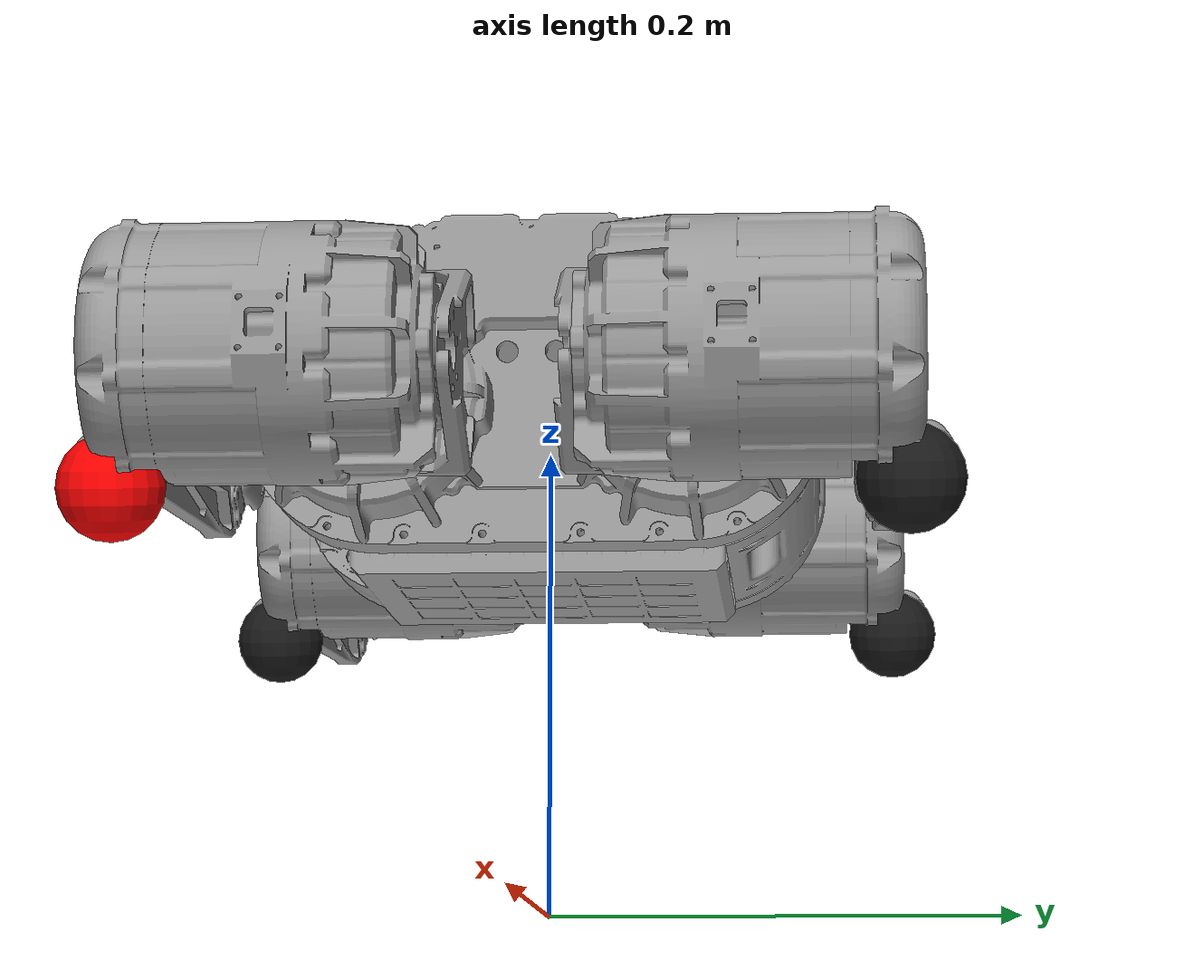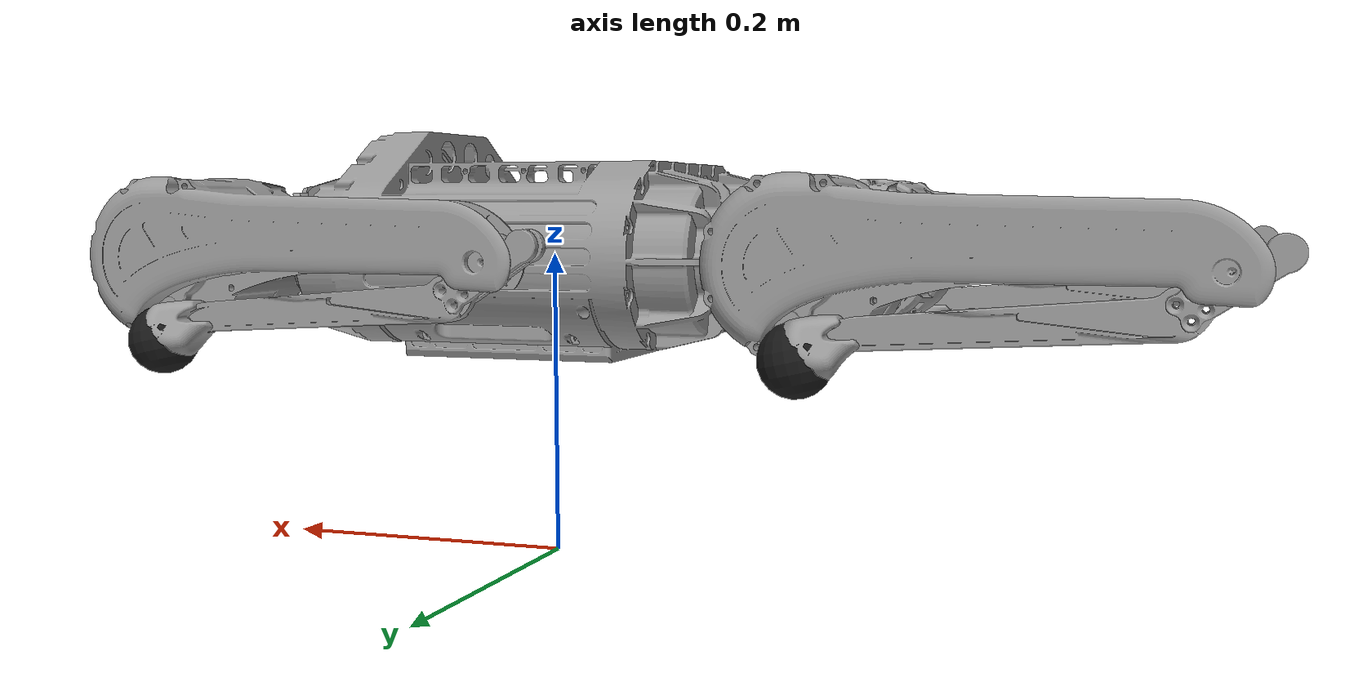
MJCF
<mujoco model="hb50">
  <compiler angle="radian" autolimits="true"/>

  <default>
    <default class="hb50">
      <default class="drive">
        <joint axis="1 0 0" armature="0.0094" damping="0.1" frictionloss="0.48"/>
        <motor ctrlrange="-24 24"/>
      </default>
      <default class="visual">
        <geom type="mesh" contype="0" conaffinity="0" group="2"/>
      </default>
      <default class="collision">
        <geom group="3" priority="1" condim="3" friction="0.9" solref="0.005 1" rgba="1 0.41 0 0.2"/>
      </default>
    </default>
  </default>

  <asset>
    <material name="silver" rgba="0.6 0.6 0.6 1" specular="0.1" shininess="0.05"/>
    <material name="black" rgba="0.1 0.1 0.1 1" specular="0.1" shininess="0.05"/>
    <material name="red" rgba="1 0 0 1" specular="0.1" shininess="0.05"/>
    <mesh name="body" file="../../meshes/hb50/visual/hb50_body.stl" scale="0.001 0.001 0.001"/>
    <mesh name="l0f" file="../../meshes/hb50/visual/hb50_l0f.stl" scale="0.001 0.001 0.001"/>
    <mesh name="l0r" file="../../meshes/hb50/visual/hb50_l0r.stl" scale="0.001 0.001 0.001"/>
    <mesh name="l1r" file="../../meshes/hb50/visual/hb50_l1r.stl" scale="0.001 0.001 0.001"/>
    <mesh name="l1l" file="../../meshes/hb50/visual/hb50_l1l.stl" scale="0.001 0.001 0.001"/>
    <mesh name="l2r" file="../../meshes/hb50/visual/hb50_l2r.stl" scale="0.001 0.001 0.001"/>
    <mesh name="l2l" file="../../meshes/hb50/visual/hb50_l2l.stl" scale="0.001 0.001 0.001"/>
  </asset>

  <worldbody>
    <body name="body" pos="0 0 0.2" childclass="hb50">
      <site name="imu" pos="0.069301 0 0"/>
      <inertial pos="0 0 0" mass="7.812" diaginertia="0.034280 0.053850 0.073590"/>
      <freejoint name="root"/>
      <geom mesh="body" material="silver" class="visual"/>
      <geom type="box" size="0.098 0.076 0.062" pos="0 0 -0.002" class="collision"/>
      <geom type="cylinder" size="0.056 0.141" pos="0 0.064 0" euler="0 1.570796 0" class="collision"/>
      <geom type="cylinder" size="0.056 0.141" pos="0 -0.064 0" euler="0 1.570796 0" class="collision"/>
      <geom type="box" size="0.024 0.064 0.024" pos="0.09 0 0.057" class="collision"/>
      <body name="fr_l0" pos="0.1405 -0.064 0">
        <inertial pos="0.021234 0.02611 -0.00004" mass="0.107" diaginertia="0.000066961 0.000070869 0.000062385"/>
        <joint name="fr_j0" class="drive" range="-1.047198 1.570796"/>
        <geom quat="0 1 0 0" mesh="l0f" material="silver" class="visual"/>
        <body name="fr_l1" pos="0.06 0.0385 0" quat="0.707107 0 0 -0.707107">
          <inertial pos="0.067316 -0.013171 0.002548" mass="2.081" diaginertia="0.006065 0.003514 0.007592"/>
          <joint name="fr_j1" class="drive" range="-1.570796 1.570796"/>
          <geom quat="0 1 0 0" mesh="l1r" material="silver" class="visual"/>
          <geom type="cylinder" size="0.051 0.066" pos="0.066 0 0" euler="0 1.570796 0" class="collision"/>
          <geom type="box" size="0.014 0.11 0.026" pos="0.118 -0.134 0.013" euler="0.05 0 0" class="collision"/>
          <body name="fr_l2" pos="0.11965 -0.22 0" quat="0.113203 0.993572 0 0">
            <inertial pos="0.000982 -0.103425 0.002827" mass="0.141" diaginertia="0.001234 0.000021630 0.001225"/>
            <joint name="fr_j2" class="drive" range="-2.705260 0"/>
            <geom quat="0 1 0 0" mesh="l2r" material="silver" class="visual"/>
            <geom type="cylinder" size="0.012 0.03" pos="0 0.01 0.004" euler="1.2 0 0" class="collision"/>
            <geom type="cylinder" size="0.016 0.098" pos="0 -0.11 0.006" euler="1.7 0.01 -0.005" class="collision"/>
            <geom type="sphere" size="0.021" pos="0.006 -0.22 0" material="red" class="visual"/>
            <geom name="fr_foot" size="0.021" pos="0.006 -0.22 0" class="collision"/>
          </body>
        </body>
      </body>
      <body name="fl_l0" pos="0.1405 0.064 0">
        <inertial pos="0.021234 -0.02611 0.00004" mass="0.107" diaginertia="0.000066961 0.000070869 0.000062385"/>
        <joint name="fl_j0" class="drive" range="-1.570796 1.047198"/>
        <geom mesh="l0f" material="silver" class="visual"/>
        <body name="fl_l1" pos="0.06 -0.0385 0" quat="0.707107 0 0 0.707107">
          <inertial pos="0.067316 0.013171 0.002548" mass="2.081" diaginertia="0.006065 0.003514 0.007592"/>
          <joint name="fl_j1" class="drive" range="-1.570796 1.570796"/>
          <geom quat="0 0 1 0" mesh="l1l" material="silver" class="visual"/>
          <geom type="cylinder" size="0.051 0.066" pos="0.066 0 0" euler="0 1.570796 0" class="collision"/>
          <geom type="box" size="0.014 0.11 0.026" pos="0.118 0.134 0.013" euler="-0.05 0 0" class="collision"/>
          <body name="fl_l2" pos="0.11965 0.22 0" quat="0.113203 -0.993572 0 0">
            <inertial pos="0.000982 0.103425 0.002827" mass="0.141" diaginertia="0.001234 0.000021630 0.001225"/>
            <joint name="fl_j2" class="drive" range="0 2.705260"/>
            <geom quat="0 0 1 0" mesh="l2l" material="silver" class="visual"/>
            <geom type="cylinder" size="0.012 0.03" pos="0 -0.01 0.004" euler="-1.2 0 0" class="collision"/>
            <geom type="cylinder" size="0.016 0.098" pos="0 0.11 0.006" euler="-1.7 0.01 0.005" class="collision"/>
            <geom type="sphere" size="0.021" pos="0.006 0.22 0" material="black" class="visual"/>
            <geom name="fl_foot" size="0.021" pos="0.006 0.22 0" class="collision"/>
          </body>
        </body>
      </body>
      <body name="rl_l0" pos="-0.1405 0.064 0" quat="0 0 0 -1">
        <inertial pos="0.01945 0.024417 0" mass="0.097" diaginertia="0.000048192 0.000050964 0.000058424"/>
        <joint name="rl_j0" class="drive" range="-1.047198 1.570796"/>
        <geom quat="0 1 0 0" mesh="l0r" material="silver" class="visual"/>
        <body name="rl_l1" pos="0.06 0.0385 0" quat="0.707107 0 0 -0.707107">
          <inertial pos="0.067294 0.016208 0.002475" mass="2.082" diaginertia="0.005907 0.003507 0.007445"/>
          <joint name="rl_j1" class="drive" range="-3.141593 1.570796"/>
          <geom quat="0 0 1 0" mesh="l1l" material="silver" class="visual"/>
          <geom type="cylinder" size="0.051 0.066" pos="0.066 0 0" euler="0 1.570796 0" class="collision"/>
          <geom type="box" size="0.014 0.11 0.026" pos="0.118 0.134 0.013" euler="-0.05 0 0" class="collision"/>
          <body name="rl_l2" pos="0.11965 0.22 0" quat="0.113203 -0.993572 0 0">
            <inertial pos="0.000982 0.103425 0.002827" mass="0.141" diaginertia="0.001234 0.000021630 0.001225"/>
            <joint name="rl_j2" class="drive" range="0 2.705260"/>
            <geom quat="0 0 1 0" mesh="l2l" material="silver" class="visual"/>
            <geom type="cylinder" size="0.012 0.03" pos="0 -0.01 0.004" euler="-1.2 0 0" class="collision"/>
            <geom type="cylinder" size="0.016 0.098" pos="0 0.11 0.006" euler="-1.7 0.01 0.005" class="collision"/>
            <geom type="sphere" size="0.021" pos="0.006 0.22 0" material="black" class="visual"/>
            <geom name="rl_foot" size="0.021" pos="0.006 0.22 0" class="collision"/>
          </body>
        </body>
      </body>
      <body name="rr_l0" pos="-0.1405 -0.064 0" quat="0 0 0 -1">
        <inertial pos="0.01945 -0.024417 0" mass="0.097" diaginertia="0.000048192 0.000050964 0.000058424"/>
        <joint name="rr_j0" class="drive" range="-1.570796 1.047198"/>
        <geom mesh="l0r" material="silver" class="visual"/>
        <body name="rr_l1" pos="0.06 -0.0385 0" quat="0.707107 0 0 0.707107">
          <inertial pos="0.067294 -0.016208 0.002475" mass="2.082" diaginertia="0.005907 0.003507 0.007445"/>
          <joint name="rr_j1" class="drive" range="-1.570796 3.141593"/>
          <geom quat="0 1 0 0" mesh="l1r" material="silver" class="visual"/>
          <geom type="cylinder" size="0.051 0.066" pos="0.066 0 0" euler="0 1.570796 0" class="collision"/>
          <geom type="box" size="0.014 0.11 0.026" pos="0.118 -0.134 0.013" euler="0.05 0 0" class="collision"/>
          <body name="rr_l2" pos="0.11965 -0.22 0" quat="0.113203 0.993572 0 0">
            <inertial pos="0.000982 -0.103425 0.002827" mass="0.141" diaginertia="0.001234 0.000021630 0.001225"/>
            <joint name="rr_j2" class="drive" range="-2.705260 0"/>
            <geom quat="0 1 0 0" mesh="l2r" material="silver" class="visual"/>
            <geom type="cylinder" size="0.012 0.03" pos="0 0.01 0.004" euler="1.2 0 0" class="collision"/>
            <geom type="cylinder" size="0.016 0.098" pos="0 -0.11 0.006" euler="1.7 0.01 -0.005" class="collision"/>
            <geom type="sphere" size="0.021" pos="0.006 -0.22 0" material="black" class="visual"/>
            <geom name="rr_foot" size="0.021" pos="0.006 -0.22 0" class="collision"/>
          </body>
        </body>
      </body>
    </body>
  </worldbody>

  <actuator>
    <motor name="fr_j0" joint="fr_j0" class="drive"/>
    <motor name="fr_j1" joint="fr_j1" class="drive"/>
    <motor name="fr_j2" joint="fr_j2" class="drive"/>
    <motor name="fl_j0" joint="fl_j0" class="drive"/>
    <motor name="fl_j1" joint="fl_j1" class="drive"/>
    <motor name="fl_j2" joint="fl_j2" class="drive"/>
    <motor name="rl_j0" joint="rl_j0" class="drive"/>
    <motor name="rl_j1" joint="rl_j1" class="drive"/>
    <motor name="rl_j2" joint="rl_j2" class="drive"/>
    <motor name="rr_j0" joint="rr_j0" class="drive"/>
    <motor name="rr_j1" joint="rr_j1" class="drive"/>
    <motor name="rr_j2" joint="rr_j2" class="drive"/>
  </actuator>

  <sensor>
    <actuatorpos name="fr_j0_pos" actuator="fr_j0" noise="6.37e-4"/>
    <actuatorpos name="fr_j1_pos" actuator="fr_j1" noise="6.37e-4"/>
    <actuatorpos name="fr_j2_pos" actuator="fr_j2" noise="6.37e-4"/>
    <actuatorpos name="fl_j0_pos" actuator="fl_j0" noise="6.37e-4"/>
    <actuatorpos name="fl_j1_pos" actuator="fl_j1" noise="6.37e-4"/>
    <actuatorpos name="fl_j2_pos" actuator="fl_j2" noise="6.37e-4"/>
    <actuatorpos name="rl_j0_pos" actuator="rl_j0" noise="6.37e-4"/>
    <actuatorpos name="rl_j1_pos" actuator="rl_j1" noise="6.37e-4"/>
    <actuatorpos name="rl_j2_pos" actuator="rl_j2" noise="6.37e-4"/>
    <actuatorpos name="rr_j0_pos" actuator="rr_j0" noise="6.37e-4"/>
    <actuatorpos name="rr_j1_pos" actuator="rr_j1" noise="6.37e-4"/>
    <actuatorpos name="rr_j2_pos" actuator="rr_j2" noise="6.37e-4"/>
    <actuatorvel name="fr_j0_vel" actuator="fr_j0" noise="0.38"/>
    <actuatorvel name="fr_j1_vel" actuator="fr_j1" noise="0.38"/>
    <actuatorvel name="fr_j2_vel" actuator="fr_j2" noise="0.38"/>
    <actuatorvel name="fl_j0_vel" actuator="fl_j0" noise="0.38"/>
    <actuatorvel name="fl_j1_vel" actuator="fl_j1" noise="0.38"/>
    <actuatorvel name="fl_j2_vel" actuator="fl_j2" noise="0.38"/>
    <actuatorvel name="rl_j0_vel" actuator="rl_j0" noise="0.38"/>
    <actuatorvel name="rl_j1_vel" actuator="rl_j1" noise="0.38"/>
    <actuatorvel name="rl_j2_vel" actuator="rl_j2" noise="0.38"/>
    <actuatorvel name="rr_j0_vel" actuator="rr_j0" noise="0.38"/>
    <actuatorvel name="rr_j1_vel" actuator="rr_j1" noise="0.38"/>
    <actuatorvel name="rr_j2_vel" actuator="rr_j2" noise="0.38"/>
    <jointactuatorfrc name="fr_j0_trq" joint="fr_j0" noise="0.00518"/>
    <jointactuatorfrc name="fr_j1_trq" joint="fr_j1" noise="0.00518"/>
    <jointactuatorfrc name="fr_j2_trq" joint="fr_j2" noise="0.00518"/>
    <jointactuatorfrc name="fl_j0_trq" joint="fl_j0" noise="0.00518"/>
    <jointactuatorfrc name="fl_j1_trq" joint="fl_j1" noise="0.00518"/>
    <jointactuatorfrc name="fl_j2_trq" joint="fl_j2" noise="0.00518"/>
    <jointactuatorfrc name="rl_j0_trq" joint="rl_j0" noise="0.00518"/>
    <jointactuatorfrc name="rl_j1_trq" joint="rl_j1" noise="0.00518"/>
    <jointactuatorfrc name="rl_j2_trq" joint="rl_j2" noise="0.00518"/>
    <jointactuatorfrc name="rr_j0_trq" joint="rr_j0" noise="0.00518"/>
    <jointactuatorfrc name="rr_j1_trq" joint="rr_j1" noise="0.00518"/>
    <jointactuatorfrc name="rr_j2_trq" joint="rr_j2" noise="0.00518"/>
    <framequat name="torso-orientation" objtype="site" objname="imu"/>
    <gyro name="torso-angular-velocity" site="imu" noise="0.1565" cutoff="520"/>
    <accelerometer name="torso-linear-acceleration" site="imu" noise="0.00134" cutoff="500"/>
    <magnetometer name="torso-magnetometer" site="imu"/>
  </sensor>

  <keyframe>
    <key name="home" qpos="0 0 0.3426 1 0 0 0 0.05 0.7 -1.4 -0.05 -0.7 1.4 0.05 -0.7 1.4 -0.05 0.7 -1.4"
      ctrl="0 0 0 0 0 0 0 0 0 0 0 0"/>
  </keyframe>
</mujoco>
